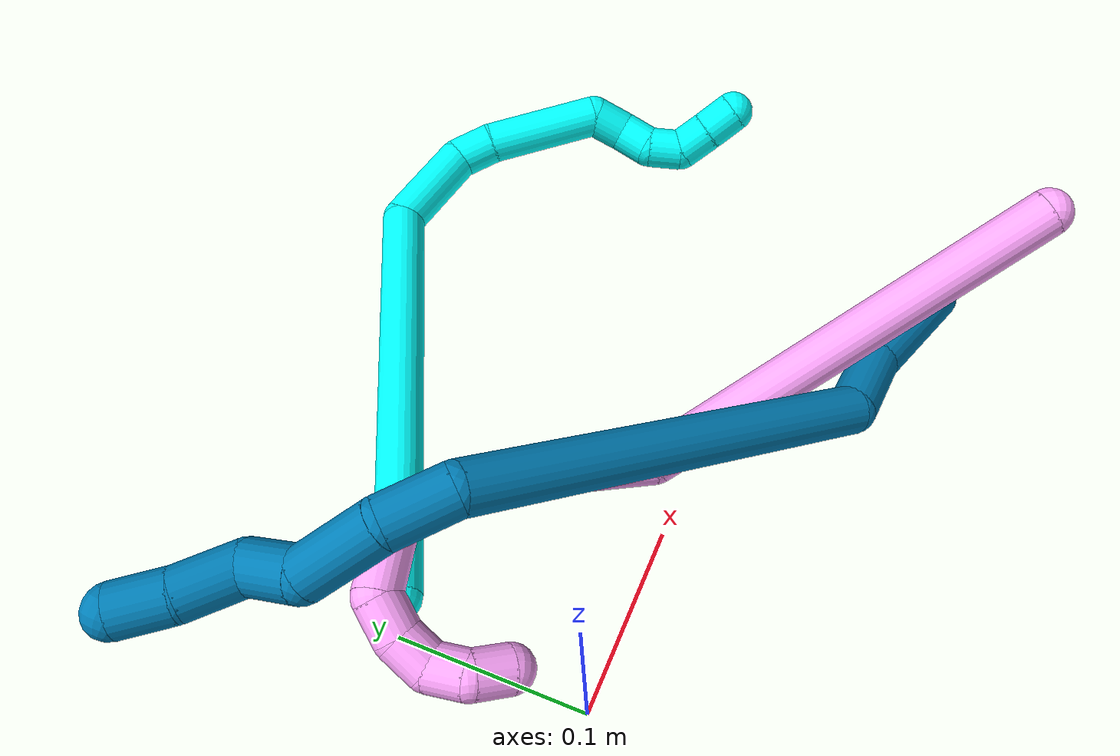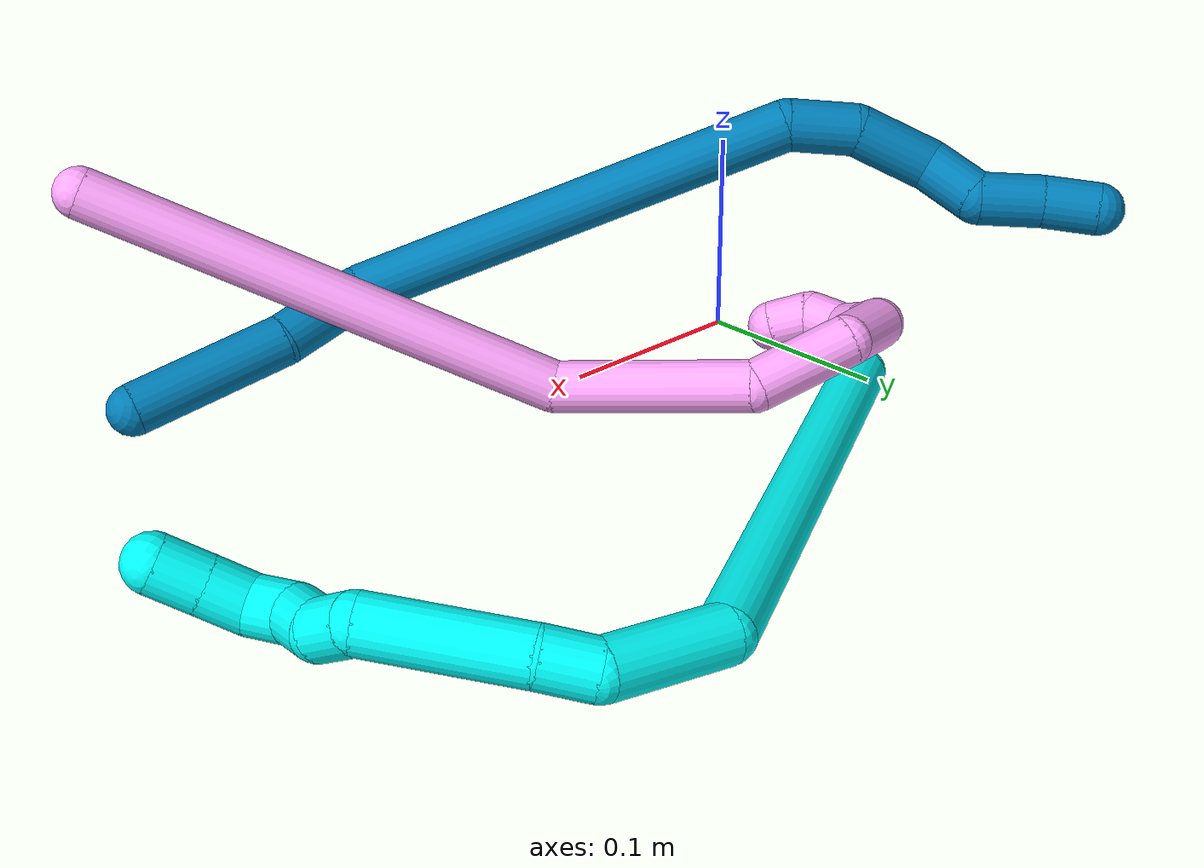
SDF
<sdf version="1.7">
 <world name="default">
  <model name="3">
   <static>0</static>
   <link name="3">
    <collision name="collision-cylinder-e_1_1_4">
     <pose>-0.002709 -0.001757 0.124394 0.01412 -0.021776 -0.000154</pose>
     <geometry><cylinder><radius>0.0125</radius><length>0.248871</length></cylinder></geometry>
     <surface>
      <friction><ode><mu>1.16</mu><mu2>1.16</mu2><slip1>0</slip1><slip2>0</slip2></ode></friction>
      <contact><ode><kp>1e+06</kp><kd>1</kd><max_vel>0</max_vel><min_depth>0.001</min_depth></ode></contact>
     </surface>
    </collision>
    <visual name="visual-cylinder-e_1_1_4">
     <pose>-0.002709 -0.001757 0.124394 0.01412 -0.021776 -0.000154</pose>
     <geometry><cylinder><radius>0.0125</radius><length>0.248871</length></cylinder></geometry>
     <material><ambient>0.003922 1 0.996078 1</ambient></material>
    </visual>
    <collision name="collision-cylinder-e_2_4_5">
     <pose>0.011413 -0.007184 0.27141 0.160852 0.633455 0.052823</pose>
     <geometry><cylinder><radius>0.0125</radius><length>0.056871</length></cylinder></geometry>
     <surface>
      <friction><ode><mu>1.16</mu><mu2>1.16</mu2><slip1>0</slip1><slip2>0</slip2></ode></friction>
      <contact><ode><kp>1e+06</kp><kd>1</kd><max_vel>0</max_vel><min_depth>0.001</min_depth></ode></contact>
     </surface>
    </collision>
    <visual name="visual-cylinder-e_2_4_5">
     <pose>0.011413 -0.007184 0.27141 0.160852 0.633455 0.052823</pose>
     <geometry><cylinder><radius>0.0125</radius><length>0.056871</length></cylinder></geometry>
     <material><ambient>0.003922 1 0.996078 1</ambient></material>
    </visual>
    <collision name="collision-cylinder-e_3_5_6">
     <pose>0.038957 -0.014474 0.29745 0.814134 1.13578 0.536866</pose>
     <geometry><cylinder><radius>0.0125</radius><length>0.023625</length></cylinder></geometry>
     <surface>
      <friction><ode><mu>1.16</mu><mu2>1.16</mu2><slip1>0</slip1><slip2>0</slip2></ode></friction>
      <contact><ode><kp>1e+06</kp><kd>1</kd><max_vel>0</max_vel><min_depth>0.001</min_depth></ode></contact>
     </surface>
    </collision>
    <visual name="visual-cylinder-e_3_5_6">
     <pose>0.038957 -0.014474 0.29745 0.814134 1.13578 0.536866</pose>
     <geometry><cylinder><radius>0.0125</radius><length>0.023625</length></cylinder></geometry>
     <material><ambient>0.003922 1 0.996078 1</ambient></material>
    </visual>
    <collision name="collision-cylinder-e_4_6_7">
     <pose>0.082189 -0.024455 0.306772 0.822587 1.31 0.64656</pose>
     <geometry><cylinder><radius>0.0125</radius><length>0.067315</length></cylinder></geometry>
     <surface>
      <friction><ode><mu>1.16</mu><mu2>1.16</mu2><slip1>0</slip1><slip2>0</slip2></ode></friction>
      <contact><ode><kp>1e+06</kp><kd>1</kd><max_vel>0</max_vel><min_depth>0.001</min_depth></ode></contact>
     </surface>
    </collision>
    <visual name="visual-cylinder-e_4_6_7">
     <pose>0.082189 -0.024455 0.306772 0.822587 1.31 0.64656</pose>
     <geometry><cylinder><radius>0.0125</radius><length>0.067315</length></cylinder></geometry>
     <material><ambient>0.003922 1 0.996078 1</ambient></material>
    </visual>
    <collision name="collision-cylinder-e_5_7_8">
     <pose>0.124056 -0.026591 0.310073 -2.12315 1.08277 -1.64488</pose>
     <geometry><cylinder><radius>0.0125</radius><length>0.021165</length></cylinder></geometry>
     <surface>
      <friction><ode><mu>1.16</mu><mu2>1.16</mu2><slip1>0</slip1><slip2>0</slip2></ode></friction>
      <contact><ode><kp>1e+06</kp><kd>1</kd><max_vel>0</max_vel><min_depth>0.001</min_depth></ode></contact>
     </surface>
    </collision>
    <visual name="visual-cylinder-e_5_7_8">
     <pose>0.124056 -0.026591 0.310073 -2.12315 1.08277 -1.64488</pose>
     <geometry><cylinder><radius>0.0125</radius><length>0.021165</length></cylinder></geometry>
     <material><ambient>0.003922 1 0.996078 1</ambient></material>
    </visual>
    <collision name="collision-cylinder-e_6_8_9">
     <pose>0.141541 -0.021252 0.301436 -2.9589 0.924788 -2.77809</pose>
     <geometry><cylinder><radius>0.0125</radius><length>0.020384</length></cylinder></geometry>
     <surface>
      <friction><ode><mu>1.16</mu><mu2>1.16</mu2><slip1>0</slip1><slip2>0</slip2></ode></friction>
      <contact><ode><kp>1e+06</kp><kd>1</kd><max_vel>0</max_vel><min_depth>0.001</min_depth></ode></contact>
     </surface>
    </collision>
    <visual name="visual-cylinder-e_6_8_9">
     <pose>0.141541 -0.021252 0.301436 -2.9589 0.924788 -2.77809</pose>
     <geometry><cylinder><radius>0.0125</radius><length>0.020384</length></cylinder></geometry>
     <material><ambient>0.003922 1 0.996078 1</ambient></material>
    </visual>
    <collision name="collision-cylinder-e_7_9_10">
     <pose>0.159754 -0.020135 0.294085 -3.13966 1.44077 -3.13939</pose>
     <geometry><cylinder><radius>0.0125</radius><length>0.020322</length></cylinder></geometry>
     <surface>
      <friction><ode><mu>1.16</mu><mu2>1.16</mu2><slip1>0</slip1><slip2>0</slip2></ode></friction>
      <contact><ode><kp>1e+06</kp><kd>1</kd><max_vel>0</max_vel><min_depth>0.001</min_depth></ode></contact>
     </surface>
    </collision>
    <visual name="visual-cylinder-e_7_9_10">
     <pose>0.159754 -0.020135 0.294085 -3.13966 1.44077 -3.13939</pose>
     <geometry><cylinder><radius>0.0125</radius><length>0.020322</length></cylinder></geometry>
     <material><ambient>0.003922 1 0.996078 1</ambient></material>
    </visual>
    <collision name="collision-cylinder-e_8_10_11">
     <pose>0.178059 -0.025444 0.295762 1.05746 0.933065 0.572283</pose>
     <geometry><cylinder><radius>0.0125</radius><length>0.020485</length></cylinder></geometry>
     <surface>
      <friction><ode><mu>1.16</mu><mu2>1.16</mu2><slip1>0</slip1><slip2>0</slip2></ode></friction>
      <contact><ode><kp>1e+06</kp><kd>1</kd><max_vel>0</max_vel><min_depth>0.001</min_depth></ode></contact>
     </surface>
    </collision>
    <visual name="visual-cylinder-e_8_10_11">
     <pose>0.178059 -0.025444 0.295762 1.05746 0.933065 0.572283</pose>
     <geometry><cylinder><radius>0.0125</radius><length>0.020485</length></cylinder></geometry>
     <material><ambient>0.003922 1 0.996078 1</ambient></material>
    </visual>
    <collision name="collision-cylinder-e_9_11_2">
     <pose>0.194563 -0.036277 0.302059 1.0316 0.909987 0.541178</pose>
     <geometry><cylinder><radius>0.0125</radius><length>0.020961</length></cylinder></geometry>
     <surface>
      <friction><ode><mu>1.16</mu><mu2>1.16</mu2><slip1>0</slip1><slip2>0</slip2></ode></friction>
      <contact><ode><kp>1e+06</kp><kd>1</kd><max_vel>0</max_vel><min_depth>0.001</min_depth></ode></contact>
     </surface>
    </collision>
    <visual name="visual-cylinder-e_9_11_2">
     <pose>0.194563 -0.036277 0.302059 1.0316 0.909987 0.541178</pose>
     <geometry><cylinder><radius>0.0125</radius><length>0.020961</length></cylinder></geometry>
     <material><ambient>0.003922 1 0.996078 1</ambient></material>
    </visual>
    <collision name="collision-sphere-2">
     <pose>0.202838 -0.041797 0.305362 0 -0 0</pose>
     <geometry><sphere><radius>0.0125</radius></sphere></geometry>
     <surface>
      <friction><ode><mu>1.16</mu><mu2>1.16</mu2><slip1>0</slip1><slip2>0</slip2></ode></friction>
      <contact><ode><kp>1e+06</kp><kd>1</kd><max_vel>0</max_vel><min_depth>0.001</min_depth></ode></contact>
     </surface>
    </collision>
    <visual name="visual-sphere-2">
     <pose>0.202838 -0.041797 0.305362 0 -0 0</pose>
     <geometry><sphere><radius>0.0125</radius></sphere></geometry>
     <material><ambient>0.003922 1 0.996078 1</ambient></material>
    </visual>
    <collision name="collision-sphere-11">
     <pose>0.186289 -0.030757 0.298757 0 -0 0</pose>
     <geometry><sphere><radius>0.0125</radius></sphere></geometry>
     <surface>
      <friction><ode><mu>1.16</mu><mu2>1.16</mu2><slip1>0</slip1><slip2>0</slip2></ode></friction>
      <contact><ode><kp>1e+06</kp><kd>1</kd><max_vel>0</max_vel><min_depth>0.001</min_depth></ode></contact>
     </surface>
    </collision>
    <visual name="visual-sphere-11">
     <pose>0.186289 -0.030757 0.298757 0 -0 0</pose>
     <geometry><sphere><radius>0.0125</radius></sphere></geometry>
     <material><ambient>0.003922 1 0.996078 1</ambient></material>
    </visual>
    <collision name="collision-sphere-10">
     <pose>0.16983 -0.020132 0.292767 0 -0 0</pose>
     <geometry><sphere><radius>0.0125</radius></sphere></geometry>
     <surface>
      <friction><ode><mu>1.16</mu><mu2>1.16</mu2><slip1>0</slip1><slip2>0</slip2></ode></friction>
      <contact><ode><kp>1e+06</kp><kd>1</kd><max_vel>0</max_vel><min_depth>0.001</min_depth></ode></contact>
     </surface>
    </collision>
    <visual name="visual-sphere-10">
     <pose>0.16983 -0.020132 0.292767 0 -0 0</pose>
     <geometry><sphere><radius>0.0125</radius></sphere></geometry>
     <material><ambient>0.003922 1 0.996078 1</ambient></material>
    </visual>
    <collision name="collision-sphere-9">
     <pose>0.149679 -0.020137 0.295402 0 -0 0</pose>
     <geometry><sphere><radius>0.0125</radius></sphere></geometry>
     <surface>
      <friction><ode><mu>1.16</mu><mu2>1.16</mu2><slip1>0</slip1><slip2>0</slip2></ode></friction>
      <contact><ode><kp>1e+06</kp><kd>1</kd><max_vel>0</max_vel><min_depth>0.001</min_depth></ode></contact>
     </surface>
    </collision>
    <visual name="visual-sphere-9">
     <pose>0.149679 -0.020137 0.295402 0 -0 0</pose>
     <geometry><sphere><radius>0.0125</radius></sphere></geometry>
     <material><ambient>0.003922 1 0.996078 1</ambient></material>
    </visual>
    <collision name="collision-sphere-4">
     <pose>-0.005419 -0.003513 0.248787 0 -0 0</pose>
     <geometry><sphere><radius>0.0125</radius></sphere></geometry>
     <surface>
      <friction><ode><mu>1.16</mu><mu2>1.16</mu2><slip1>0</slip1><slip2>0</slip2></ode></friction>
      <contact><ode><kp>1e+06</kp><kd>1</kd><max_vel>0</max_vel><min_depth>0.001</min_depth></ode></contact>
     </surface>
    </collision>
    <visual name="visual-sphere-4">
     <pose>-0.005419 -0.003513 0.248787 0 -0 0</pose>
     <geometry><sphere><radius>0.0125</radius></sphere></geometry>
     <material><ambient>0.003922 1 0.996078 1</ambient></material>
    </visual>
    <collision name="collision-sphere-1">
     <geometry><sphere><radius>0.0125</radius></sphere></geometry>
     <surface>
      <friction><ode><mu>1.16</mu><mu2>1.16</mu2><slip1>0</slip1><slip2>0</slip2></ode></friction>
      <contact><ode><kp>1e+06</kp><kd>1</kd><max_vel>0</max_vel><min_depth>0.001</min_depth></ode></contact>
     </surface>
    </collision>
    <visual name="visual-sphere-1">
     <geometry><sphere><radius>0.0125</radius></sphere></geometry>
     <material><ambient>0.003922 1 0.996078 1</ambient></material>
    </visual>
    <collision name="collision-sphere-8">
     <pose>0.133403 -0.022367 0.307469 0 -0 0</pose>
     <geometry><sphere><radius>0.0125</radius></sphere></geometry>
     <surface>
      <friction><ode><mu>1.16</mu><mu2>1.16</mu2><slip1>0</slip1><slip2>0</slip2></ode></friction>
      <contact><ode><kp>1e+06</kp><kd>1</kd><max_vel>0</max_vel><min_depth>0.001</min_depth></ode></contact>
     </surface>
    </collision>
    <visual name="visual-sphere-8">
     <pose>0.133403 -0.022367 0.307469 0 -0 0</pose>
     <geometry><sphere><radius>0.0125</radius></sphere></geometry>
     <material><ambient>0.003922 1 0.996078 1</ambient></material>
    </visual>
    <collision name="collision-sphere-5">
     <pose>0.028245 -0.010854 0.294033 0 -0 0</pose>
     <geometry><sphere><radius>0.0125</radius></sphere></geometry>
     <surface>
      <friction><ode><mu>1.16</mu><mu2>1.16</mu2><slip1>0</slip1><slip2>0</slip2></ode></friction>
      <contact><ode><kp>1e+06</kp><kd>1</kd><max_vel>0</max_vel><min_depth>0.001</min_depth></ode></contact>
     </surface>
    </collision>
    <visual name="visual-sphere-5">
     <pose>0.028245 -0.010854 0.294033 0 -0 0</pose>
     <geometry><sphere><radius>0.0125</radius></sphere></geometry>
     <material><ambient>0.003922 1 0.996078 1</ambient></material>
    </visual>
    <collision name="collision-sphere-6">
     <pose>0.04967 -0.018094 0.300868 0 -0 0</pose>
     <geometry><sphere><radius>0.0125</radius></sphere></geometry>
     <surface>
      <friction><ode><mu>1.16</mu><mu2>1.16</mu2><slip1>0</slip1><slip2>0</slip2></ode></friction>
      <contact><ode><kp>1e+06</kp><kd>1</kd><max_vel>0</max_vel><min_depth>0.001</min_depth></ode></contact>
     </surface>
    </collision>
    <visual name="visual-sphere-6">
     <pose>0.04967 -0.018094 0.300868 0 -0 0</pose>
     <geometry><sphere><radius>0.0125</radius></sphere></geometry>
     <material><ambient>0.003922 1 0.996078 1</ambient></material>
    </visual>
    <collision name="collision-sphere-7">
     <pose>0.114708 -0.030815 0.312676 0 -0 0</pose>
     <geometry><sphere><radius>0.0125</radius></sphere></geometry>
     <surface>
      <friction><ode><mu>1.16</mu><mu2>1.16</mu2><slip1>0</slip1><slip2>0</slip2></ode></friction>
      <contact><ode><kp>1e+06</kp><kd>1</kd><max_vel>0</max_vel><min_depth>0.001</min_depth></ode></contact>
     </surface>
    </collision>
    <visual name="visual-sphere-7">
     <pose>0.114708 -0.030815 0.312676 0 -0 0</pose>
     <geometry><sphere><radius>0.0125</radius></sphere></geometry>
     <material><ambient>0.003922 1 0.996078 1</ambient></material>
    </visual>
    <inertial>
     <pose>0.045822 -0.011041 0.21029 0 -0 0</pose>
     <mass>0.5</mass>
     <inertia>
      <ixx>0.001336</ixx>
      <ixy>0</ixy>
      <ixz>0</ixz>
      <iyy>0.001349</iyy>
      <iyz>0</iyz>
      <izz>3.3e-05</izz>
     </inertia>
    </inertial>
   </link>
   <pose>0.014945 0.106775 0.011213 -1.58583 0.08134 -1.10991</pose>
  </model>
  <model name="4">
   <static>0</static>
   <link name="4">
    <collision name="collision-cylinder-e_1_1_4">
     <pose>-0.082285 0.077924 -0.035283 -1.99596 -0.766002 1.11677</pose>
     <geometry><cylinder><radius>0.0125</radius><length>0.237385</length></cylinder></geometry>
     <surface>
      <friction><ode><mu>1.16</mu><mu2>1.16</mu2><slip1>0</slip1><slip2>0</slip2></ode></friction>
      <contact><ode><kp>1e+06</kp><kd>1</kd><max_vel>0</max_vel><min_depth>0.001</min_depth></ode></contact>
     </surface>
    </collision>
    <visual name="visual-cylinder-e_1_1_4">
     <pose>-0.082285 0.077924 -0.035283 -1.99596 -0.766002 1.11677</pose>
     <geometry><cylinder><radius>0.0125</radius><length>0.237385</length></cylinder></geometry>
     <material><ambient>1 0.65098 0.996078 1</ambient></material>
    </visual>
    <collision name="collision-cylinder-e_2_4_5">
     <pose>-0.211544 0.166202 -0.073307 -1.82959 -1.34665 1.60647</pose>
     <geometry><cylinder><radius>0.0125</radius><length>0.096361</length></cylinder></geometry>
     <surface>
      <friction><ode><mu>1.16</mu><mu2>1.16</mu2><slip1>0</slip1><slip2>0</slip2></ode></friction>
      <contact><ode><kp>1e+06</kp><kd>1</kd><max_vel>0</max_vel><min_depth>0.001</min_depth></ode></contact>
     </surface>
    </collision>
    <visual name="visual-cylinder-e_2_4_5">
     <pose>-0.211544 0.166202 -0.073307 -1.82959 -1.34665 1.60647</pose>
     <geometry><cylinder><radius>0.0125</radius><length>0.096361</length></cylinder></geometry>
     <material><ambient>1 0.65098 0.996078 1</ambient></material>
    </visual>
    <collision name="collision-cylinder-e_3_5_6">
     <pose>-0.278705 0.174456 -0.090519 2.99756 -0.943871 -2.86077</pose>
     <geometry><cylinder><radius>0.0125</radius><length>0.049852</length></cylinder></geometry>
     <surface>
      <friction><ode><mu>1.16</mu><mu2>1.16</mu2><slip1>0</slip1><slip2>0</slip2></ode></friction>
      <contact><ode><kp>1e+06</kp><kd>1</kd><max_vel>0</max_vel><min_depth>0.001</min_depth></ode></contact>
     </surface>
    </collision>
    <visual name="visual-cylinder-e_3_5_6">
     <pose>-0.278705 0.174456 -0.090519 2.99756 -0.943871 -2.86077</pose>
     <geometry><cylinder><radius>0.0125</radius><length>0.049852</length></cylinder></geometry>
     <material><ambient>1 0.65098 0.996078 1</ambient></material>
    </visual>
    <collision name="collision-cylinder-e_4_6_7">
     <pose>-0.302636 0.174619 -0.121799 -3.00783 -0.217299 2.04018</pose>
     <geometry><cylinder><radius>0.0125</radius><length>0.034736</length></cylinder></geometry>
     <surface>
      <friction><ode><mu>1.16</mu><mu2>1.16</mu2><slip1>0</slip1><slip2>0</slip2></ode></friction>
      <contact><ode><kp>1e+06</kp><kd>1</kd><max_vel>0</max_vel><min_depth>0.001</min_depth></ode></contact>
     </surface>
    </collision>
    <visual name="visual-cylinder-e_4_6_7">
     <pose>-0.302636 0.174619 -0.121799 -3.00783 -0.217299 2.04018</pose>
     <geometry><cylinder><radius>0.0125</radius><length>0.034736</length></cylinder></geometry>
     <material><ambient>1 0.65098 0.996078 1</ambient></material>
    </visual>
    <collision name="collision-cylinder-e_5_7_8">
     <pose>-0.301013 0.179623 -0.147506 -2.84266 0.522856 -2.11628</pose>
     <geometry><cylinder><radius>0.0125</radius><length>0.021495</length></cylinder></geometry>
     <surface>
      <friction><ode><mu>1.16</mu><mu2>1.16</mu2><slip1>0</slip1><slip2>0</slip2></ode></friction>
      <contact><ode><kp>1e+06</kp><kd>1</kd><max_vel>0</max_vel><min_depth>0.001</min_depth></ode></contact>
     </surface>
    </collision>
    <visual name="visual-cylinder-e_5_7_8">
     <pose>-0.301013 0.179623 -0.147506 -2.84266 0.522856 -2.11628</pose>
     <geometry><cylinder><radius>0.0125</radius><length>0.021495</length></cylinder></geometry>
     <material><ambient>1 0.65098 0.996078 1</ambient></material>
    </visual>
    <collision name="collision-cylinder-e_6_8_9">
     <pose>-0.288248 0.183533 -0.163113 -2.96921 0.826832 -2.75264</pose>
     <geometry><cylinder><radius>0.0125</radius><length>0.020109</length></cylinder></geometry>
     <surface>
      <friction><ode><mu>1.16</mu><mu2>1.16</mu2><slip1>0</slip1><slip2>0</slip2></ode></friction>
      <contact><ode><kp>1e+06</kp><kd>1</kd><max_vel>0</max_vel><min_depth>0.001</min_depth></ode></contact>
     </surface>
    </collision>
    <visual name="visual-cylinder-e_6_8_9">
     <pose>-0.288248 0.183533 -0.163113 -2.96921 0.826832 -2.75264</pose>
     <geometry><cylinder><radius>0.0125</radius><length>0.020109</length></cylinder></geometry>
     <material><ambient>1 0.65098 0.996078 1</ambient></material>
    </visual>
    <collision name="collision-cylinder-e_7_9_10">
     <pose>-0.27236 0.180649 -0.173253 2.27354 1.01191 1.74832</pose>
     <geometry><cylinder><radius>0.0125</radius><length>0.020028</length></cylinder></geometry>
     <surface>
      <friction><ode><mu>1.16</mu><mu2>1.16</mu2><slip1>0</slip1><slip2>0</slip2></ode></friction>
      <contact><ode><kp>1e+06</kp><kd>1</kd><max_vel>0</max_vel><min_depth>0.001</min_depth></ode></contact>
     </surface>
    </collision>
    <visual name="visual-cylinder-e_7_9_10">
     <pose>-0.27236 0.180649 -0.173253 2.27354 1.01191 1.74832</pose>
     <geometry><cylinder><radius>0.0125</radius><length>0.020028</length></cylinder></geometry>
     <material><ambient>1 0.65098 0.996078 1</ambient></material>
    </visual>
    <collision name="collision-cylinder-e_8_10_2">
     <pose>-0.253962 0.176683 -0.175212 -0.057676 1.42298 -0.049728</pose>
     <geometry><cylinder><radius>0.0125</radius><length>0.020034</length></cylinder></geometry>
     <surface>
      <friction><ode><mu>1.16</mu><mu2>1.16</mu2><slip1>0</slip1><slip2>0</slip2></ode></friction>
      <contact><ode><kp>1e+06</kp><kd>1</kd><max_vel>0</max_vel><min_depth>0.001</min_depth></ode></contact>
     </surface>
    </collision>
    <visual name="visual-cylinder-e_8_10_2">
     <pose>-0.253962 0.176683 -0.175212 -0.057676 1.42298 -0.049728</pose>
     <geometry><cylinder><radius>0.0125</radius><length>0.020034</length></cylinder></geometry>
     <material><ambient>1 0.65098 0.996078 1</ambient></material>
    </visual>
    <collision name="collision-sphere-2">
     <pose>-0.244054 0.176768 -0.173739 0 -0 0</pose>
     <geometry><sphere><radius>0.0125</radius></sphere></geometry>
     <surface>
      <friction><ode><mu>1.16</mu><mu2>1.16</mu2><slip1>0</slip1><slip2>0</slip2></ode></friction>
      <contact><ode><kp>1e+06</kp><kd>1</kd><max_vel>0</max_vel><min_depth>0.001</min_depth></ode></contact>
     </surface>
    </collision>
    <visual name="visual-sphere-2">
     <pose>-0.244054 0.176768 -0.173739 0 -0 0</pose>
     <geometry><sphere><radius>0.0125</radius></sphere></geometry>
     <material><ambient>1 0.65098 0.996078 1</ambient></material>
    </visual>
    <collision name="collision-sphere-10">
     <pose>-0.263869 0.176597 -0.176684 0 -0 0</pose>
     <geometry><sphere><radius>0.0125</radius></sphere></geometry>
     <surface>
      <friction><ode><mu>1.16</mu><mu2>1.16</mu2><slip1>0</slip1><slip2>0</slip2></ode></friction>
      <contact><ode><kp>1e+06</kp><kd>1</kd><max_vel>0</max_vel><min_depth>0.001</min_depth></ode></contact>
     </surface>
    </collision>
    <visual name="visual-sphere-10">
     <pose>-0.263869 0.176597 -0.176684 0 -0 0</pose>
     <geometry><sphere><radius>0.0125</radius></sphere></geometry>
     <material><ambient>1 0.65098 0.996078 1</ambient></material>
    </visual>
    <collision name="collision-sphere-9">
     <pose>-0.28085 0.184701 -0.169821 0 -0 0</pose>
     <geometry><sphere><radius>0.0125</radius></sphere></geometry>
     <surface>
      <friction><ode><mu>1.16</mu><mu2>1.16</mu2><slip1>0</slip1><slip2>0</slip2></ode></friction>
      <contact><ode><kp>1e+06</kp><kd>1</kd><max_vel>0</max_vel><min_depth>0.001</min_depth></ode></contact>
     </surface>
    </collision>
    <visual name="visual-sphere-9">
     <pose>-0.28085 0.184701 -0.169821 0 -0 0</pose>
     <geometry><sphere><radius>0.0125</radius></sphere></geometry>
     <material><ambient>1 0.65098 0.996078 1</ambient></material>
    </visual>
    <collision name="collision-sphere-4">
     <pose>-0.164569 0.155849 -0.070566 0 -0 0</pose>
     <geometry><sphere><radius>0.0125</radius></sphere></geometry>
     <surface>
      <friction><ode><mu>1.16</mu><mu2>1.16</mu2><slip1>0</slip1><slip2>0</slip2></ode></friction>
      <contact><ode><kp>1e+06</kp><kd>1</kd><max_vel>0</max_vel><min_depth>0.001</min_depth></ode></contact>
     </surface>
    </collision>
    <visual name="visual-sphere-4">
     <pose>-0.164569 0.155849 -0.070566 0 -0 0</pose>
     <geometry><sphere><radius>0.0125</radius></sphere></geometry>
     <material><ambient>1 0.65098 0.996078 1</ambient></material>
    </visual>
    <collision name="collision-sphere-1">
     <geometry><sphere><radius>0.0125</radius></sphere></geometry>
     <surface>
      <friction><ode><mu>1.16</mu><mu2>1.16</mu2><slip1>0</slip1><slip2>0</slip2></ode></friction>
      <contact><ode><kp>1e+06</kp><kd>1</kd><max_vel>0</max_vel><min_depth>0.001</min_depth></ode></contact>
     </surface>
    </collision>
    <visual name="visual-sphere-1">
     <geometry><sphere><radius>0.0125</radius></sphere></geometry>
     <material><ambient>1 0.65098 0.996078 1</ambient></material>
    </visual>
    <collision name="collision-sphere-8">
     <pose>-0.295646 0.182365 -0.156404 0 -0 0</pose>
     <geometry><sphere><radius>0.0125</radius></sphere></geometry>
     <surface>
      <friction><ode><mu>1.16</mu><mu2>1.16</mu2><slip1>0</slip1><slip2>0</slip2></ode></friction>
      <contact><ode><kp>1e+06</kp><kd>1</kd><max_vel>0</max_vel><min_depth>0.001</min_depth></ode></contact>
     </surface>
    </collision>
    <visual name="visual-sphere-8">
     <pose>-0.295646 0.182365 -0.156404 0 -0 0</pose>
     <geometry><sphere><radius>0.0125</radius></sphere></geometry>
     <material><ambient>1 0.65098 0.996078 1</ambient></material>
    </visual>
    <collision name="collision-sphere-5">
     <pose>-0.258519 0.176554 -0.076048 0 -0 0</pose>
     <geometry><sphere><radius>0.0125</radius></sphere></geometry>
     <surface>
      <friction><ode><mu>1.16</mu><mu2>1.16</mu2><slip1>0</slip1><slip2>0</slip2></ode></friction>
      <contact><ode><kp>1e+06</kp><kd>1</kd><max_vel>0</max_vel><min_depth>0.001</min_depth></ode></contact>
     </surface>
    </collision>
    <visual name="visual-sphere-5">
     <pose>-0.258519 0.176554 -0.076048 0 -0 0</pose>
     <geometry><sphere><radius>0.0125</radius></sphere></geometry>
     <material><ambient>1 0.65098 0.996078 1</ambient></material>
    </visual>
    <collision name="collision-sphere-6">
     <pose>-0.298891 0.172357 -0.104991 0 -0 0</pose>
     <geometry><sphere><radius>0.0125</radius></sphere></geometry>
     <surface>
      <friction><ode><mu>1.16</mu><mu2>1.16</mu2><slip1>0</slip1><slip2>0</slip2></ode></friction>
      <contact><ode><kp>1e+06</kp><kd>1</kd><max_vel>0</max_vel><min_depth>0.001</min_depth></ode></contact>
     </surface>
    </collision>
    <visual name="visual-sphere-6">
     <pose>-0.298891 0.172357 -0.104991 0 -0 0</pose>
     <geometry><sphere><radius>0.0125</radius></sphere></geometry>
     <material><ambient>1 0.65098 0.996078 1</ambient></material>
    </visual>
    <collision name="collision-sphere-7">
     <pose>-0.30638 0.17688 -0.138607 0 -0 0</pose>
     <geometry><sphere><radius>0.0125</radius></sphere></geometry>
     <surface>
      <friction><ode><mu>1.16</mu><mu2>1.16</mu2><slip1>0</slip1><slip2>0</slip2></ode></friction>
      <contact><ode><kp>1e+06</kp><kd>1</kd><max_vel>0</max_vel><min_depth>0.001</min_depth></ode></contact>
     </surface>
    </collision>
    <visual name="visual-sphere-7">
     <pose>-0.30638 0.17688 -0.138607 0 -0 0</pose>
     <geometry><sphere><radius>0.0125</radius></sphere></geometry>
     <material><ambient>1 0.65098 0.996078 1</ambient></material>
    </visual>
    <inertial>
     <pose>-0.174267 0.127971 -0.075228 0 -0 0</pose>
     <mass>0.5</mass>
     <inertia>
      <ixx>0.001072</ixx>
      <ixy>0</ixy>
      <ixz>0</ixz>
      <iyy>0.001289</iyy>
      <iyz>0</iyz>
      <izz>9.4e-05</izz>
     </inertia>
    </inertial>
   </link>
   <pose>0.28825 -0.133452 0.108726 -1.50257 0.335262 -1.05038</pose>
  </model>
  <model name="9">
   <static>0</static>
   <link name="9">
    <collision name="collision-cylinder-e_1_1_4">
     <pose>-0.020852 0.012047 -0.029908 -2.75868 -0.574061 1.97953</pose>
     <geometry><cylinder><radius>0.0125</radius><length>0.076796</length></cylinder></geometry>
     <surface>
      <friction><ode><mu>1.16</mu><mu2>1.16</mu2><slip1>0</slip1><slip2>0</slip2></ode></friction>
      <contact><ode><kp>1e+06</kp><kd>1</kd><max_vel>0</max_vel><min_depth>0.001</min_depth></ode></contact>
     </surface>
    </collision>
    <visual name="visual-cylinder-e_1_1_4">
     <pose>-0.020852 0.012047 -0.029908 -2.75868 -0.574061 1.97953</pose>
     <geometry><cylinder><radius>0.0125</radius><length>0.076796</length></cylinder></geometry>
     <material><ambient>0 0.490196 0.709804 1</ambient></material>
    </visual>
    <collision name="collision-cylinder-e_2_4_5">
     <pose>-0.055942 0.026921 -0.07787 -2.98623 -0.661902 2.69602</pose>
     <geometry><cylinder><radius>0.0125</radius><length>0.046333</length></cylinder></geometry>
     <surface>
      <friction><ode><mu>1.16</mu><mu2>1.16</mu2><slip1>0</slip1><slip2>0</slip2></ode></friction>
      <contact><ode><kp>1e+06</kp><kd>1</kd><max_vel>0</max_vel><min_depth>0.001</min_depth></ode></contact>
     </surface>
    </collision>
    <visual name="visual-cylinder-e_2_4_5">
     <pose>-0.055942 0.026921 -0.07787 -2.98623 -0.661902 2.69602</pose>
     <geometry><cylinder><radius>0.0125</radius><length>0.046333</length></cylinder></geometry>
     <material><ambient>0 0.490196 0.709804 1</ambient></material>
    </visual>
    <collision name="collision-cylinder-e_3_5_6">
     <pose>-0.126857 0.103602 -0.153863 -2.23603 -0.543203 1.0398</pose>
     <geometry><cylinder><radius>0.0125</radius><length>0.219302</length></cylinder></geometry>
     <surface>
      <friction><ode><mu>1.16</mu><mu2>1.16</mu2><slip1>0</slip1><slip2>0</slip2></ode></friction>
      <contact><ode><kp>1e+06</kp><kd>1</kd><max_vel>0</max_vel><min_depth>0.001</min_depth></ode></contact>
     </surface>
    </collision>
    <visual name="visual-cylinder-e_3_5_6">
     <pose>-0.126857 0.103602 -0.153863 -2.23603 -0.543203 1.0398</pose>
     <geometry><cylinder><radius>0.0125</radius><length>0.219302</length></cylinder></geometry>
     <material><ambient>0 0.490196 0.709804 1</ambient></material>
    </visual>
    <collision name="collision-cylinder-e_4_6_7">
     <pose>-0.185276 0.188312 -0.223897 -2.41004 -0.106788 0.277286</pose>
     <geometry><cylinder><radius>0.0125</radius><length>0.032693</length></cylinder></geometry>
     <surface>
      <friction><ode><mu>1.16</mu><mu2>1.16</mu2><slip1>0</slip1><slip2>0</slip2></ode></friction>
      <contact><ode><kp>1e+06</kp><kd>1</kd><max_vel>0</max_vel><min_depth>0.001</min_depth></ode></contact>
     </surface>
    </collision>
    <visual name="visual-cylinder-e_4_6_7">
     <pose>-0.185276 0.188312 -0.223897 -2.41004 -0.106788 0.277286</pose>
     <geometry><cylinder><radius>0.0125</radius><length>0.032693</length></cylinder></geometry>
     <material><ambient>0 0.490196 0.709804 1</ambient></material>
    </visual>
    <collision name="collision-cylinder-e_5_7_8">
     <pose>-0.182057 0.210767 -0.251172 -2.48923 0.254085 -0.72211</pose>
     <geometry><cylinder><radius>0.0125</radius><length>0.039475</length></cylinder></geometry>
     <surface>
      <friction><ode><mu>1.16</mu><mu2>1.16</mu2><slip1>0</slip1><slip2>0</slip2></ode></friction>
      <contact><ode><kp>1e+06</kp><kd>1</kd><max_vel>0</max_vel><min_depth>0.001</min_depth></ode></contact>
     </surface>
    </collision>
    <visual name="visual-cylinder-e_5_7_8">
     <pose>-0.182057 0.210767 -0.251172 -2.48923 0.254085 -0.72211</pose>
     <geometry><cylinder><radius>0.0125</radius><length>0.039475</length></cylinder></geometry>
     <material><ambient>0 0.490196 0.709804 1</ambient></material>
    </visual>
    <collision name="collision-cylinder-e_6_8_9">
     <pose>-0.171139 0.23529 -0.269469 -1.80735 0.421242 -0.530133</pose>
     <geometry><cylinder><radius>0.0125</radius><length>0.029141</length></cylinder></geometry>
     <surface>
      <friction><ode><mu>1.16</mu><mu2>1.16</mu2><slip1>0</slip1><slip2>0</slip2></ode></friction>
      <contact><ode><kp>1e+06</kp><kd>1</kd><max_vel>0</max_vel><min_depth>0.001</min_depth></ode></contact>
     </surface>
    </collision>
    <visual name="visual-cylinder-e_6_8_9">
     <pose>-0.171139 0.23529 -0.269469 -1.80735 0.421242 -0.530133</pose>
     <geometry><cylinder><radius>0.0125</radius><length>0.029141</length></cylinder></geometry>
     <material><ambient>0 0.490196 0.709804 1</ambient></material>
    </visual>
    <collision name="collision-cylinder-e_7_9_10">
     <pose>-0.167124 0.258897 -0.283129 -2.34977 -0.128748 0.306039</pose>
     <geometry><cylinder><radius>0.0125</radius><length>0.030267</length></cylinder></geometry>
     <surface>
      <friction><ode><mu>1.16</mu><mu2>1.16</mu2><slip1>0</slip1><slip2>0</slip2></ode></friction>
      <contact><ode><kp>1e+06</kp><kd>1</kd><max_vel>0</max_vel><min_depth>0.001</min_depth></ode></contact>
     </surface>
    </collision>
    <visual name="visual-cylinder-e_7_9_10">
     <pose>-0.167124 0.258897 -0.283129 -2.34977 -0.128748 0.306039</pose>
     <geometry><cylinder><radius>0.0125</radius><length>0.030267</length></cylinder></geometry>
     <material><ambient>0 0.490196 0.709804 1</ambient></material>
    </visual>
    <collision name="collision-cylinder-e_8_10_2">
     <pose>-0.169556 0.280044 -0.301362 -2.2044 -0.037647 0.074347</pose>
     <geometry><cylinder><radius>0.0125</radius><length>0.025994</length></cylinder></geometry>
     <surface>
      <friction><ode><mu>1.16</mu><mu2>1.16</mu2><slip1>0</slip1><slip2>0</slip2></ode></friction>
      <contact><ode><kp>1e+06</kp><kd>1</kd><max_vel>0</max_vel><min_depth>0.001</min_depth></ode></contact>
     </surface>
    </collision>
    <visual name="visual-cylinder-e_8_10_2">
     <pose>-0.169556 0.280044 -0.301362 -2.2044 -0.037647 0.074347</pose>
     <geometry><cylinder><radius>0.0125</radius><length>0.025994</length></cylinder></geometry>
     <material><ambient>0 0.490196 0.709804 1</ambient></material>
    </visual>
    <collision name="collision-sphere-2">
     <pose>-0.170045 0.290511 -0.309052 0 -0 0</pose>
     <geometry><sphere><radius>0.0125</radius></sphere></geometry>
     <surface>
      <friction><ode><mu>1.16</mu><mu2>1.16</mu2><slip1>0</slip1><slip2>0</slip2></ode></friction>
      <contact><ode><kp>1e+06</kp><kd>1</kd><max_vel>0</max_vel><min_depth>0.001</min_depth></ode></contact>
     </surface>
    </collision>
    <visual name="visual-sphere-2">
     <pose>-0.170045 0.290511 -0.309052 0 -0 0</pose>
     <geometry><sphere><radius>0.0125</radius></sphere></geometry>
     <material><ambient>0 0.490196 0.709804 1</ambient></material>
    </visual>
    <collision name="collision-sphere-10">
     <pose>-0.169067 0.269577 -0.293673 0 -0 0</pose>
     <geometry><sphere><radius>0.0125</radius></sphere></geometry>
     <surface>
      <friction><ode><mu>1.16</mu><mu2>1.16</mu2><slip1>0</slip1><slip2>0</slip2></ode></friction>
      <contact><ode><kp>1e+06</kp><kd>1</kd><max_vel>0</max_vel><min_depth>0.001</min_depth></ode></contact>
     </surface>
    </collision>
    <visual name="visual-sphere-10">
     <pose>-0.169067 0.269577 -0.293673 0 -0 0</pose>
     <geometry><sphere><radius>0.0125</radius></sphere></geometry>
     <material><ambient>0 0.490196 0.709804 1</ambient></material>
    </visual>
    <collision name="collision-sphere-9">
     <pose>-0.165181 0.248216 -0.272585 0 -0 0</pose>
     <geometry><sphere><radius>0.0125</radius></sphere></geometry>
     <surface>
      <friction><ode><mu>1.16</mu><mu2>1.16</mu2><slip1>0</slip1><slip2>0</slip2></ode></friction>
      <contact><ode><kp>1e+06</kp><kd>1</kd><max_vel>0</max_vel><min_depth>0.001</min_depth></ode></contact>
     </surface>
    </collision>
    <visual name="visual-sphere-9">
     <pose>-0.165181 0.248216 -0.272585 0 -0 0</pose>
     <geometry><sphere><radius>0.0125</radius></sphere></geometry>
     <material><ambient>0 0.490196 0.709804 1</ambient></material>
    </visual>
    <collision name="collision-sphere-4">
     <pose>-0.041704 0.024093 -0.059816 0 -0 0</pose>
     <geometry><sphere><radius>0.0125</radius></sphere></geometry>
     <surface>
      <friction><ode><mu>1.16</mu><mu2>1.16</mu2><slip1>0</slip1><slip2>0</slip2></ode></friction>
      <contact><ode><kp>1e+06</kp><kd>1</kd><max_vel>0</max_vel><min_depth>0.001</min_depth></ode></contact>
     </surface>
    </collision>
    <visual name="visual-sphere-4">
     <pose>-0.041704 0.024093 -0.059816 0 -0 0</pose>
     <geometry><sphere><radius>0.0125</radius></sphere></geometry>
     <material><ambient>0 0.490196 0.709804 1</ambient></material>
    </visual>
    <collision name="collision-sphere-1">
     <geometry><sphere><radius>0.0125</radius></sphere></geometry>
     <surface>
      <friction><ode><mu>1.16</mu><mu2>1.16</mu2><slip1>0</slip1><slip2>0</slip2></ode></friction>
      <contact><ode><kp>1e+06</kp><kd>1</kd><max_vel>0</max_vel><min_depth>0.001</min_depth></ode></contact>
     </surface>
    </collision>
    <visual name="visual-sphere-1">
     <geometry><sphere><radius>0.0125</radius></sphere></geometry>
     <material><ambient>0 0.490196 0.709804 1</ambient></material>
    </visual>
    <collision name="collision-sphere-8">
     <pose>-0.177096 0.222364 -0.266353 0 -0 0</pose>
     <geometry><sphere><radius>0.0125</radius></sphere></geometry>
     <surface>
      <friction><ode><mu>1.16</mu><mu2>1.16</mu2><slip1>0</slip1><slip2>0</slip2></ode></friction>
      <contact><ode><kp>1e+06</kp><kd>1</kd><max_vel>0</max_vel><min_depth>0.001</min_depth></ode></contact>
     </surface>
    </collision>
    <visual name="visual-sphere-8">
     <pose>-0.177096 0.222364 -0.266353 0 -0 0</pose>
     <geometry><sphere><radius>0.0125</radius></sphere></geometry>
     <material><ambient>0 0.490196 0.709804 1</ambient></material>
    </visual>
    <collision name="collision-sphere-5">
     <pose>-0.070181 0.029749 -0.095924 0 -0 0</pose>
     <geometry><sphere><radius>0.0125</radius></sphere></geometry>
     <surface>
      <friction><ode><mu>1.16</mu><mu2>1.16</mu2><slip1>0</slip1><slip2>0</slip2></ode></friction>
      <contact><ode><kp>1e+06</kp><kd>1</kd><max_vel>0</max_vel><min_depth>0.001</min_depth></ode></contact>
     </surface>
    </collision>
    <visual name="visual-sphere-5">
     <pose>-0.070181 0.029749 -0.095924 0 -0 0</pose>
     <geometry><sphere><radius>0.0125</radius></sphere></geometry>
     <material><ambient>0 0.490196 0.709804 1</ambient></material>
    </visual>
    <collision name="collision-sphere-6">
     <pose>-0.183534 0.177454 -0.211802 0 -0 0</pose>
     <geometry><sphere><radius>0.0125</radius></sphere></geometry>
     <surface>
      <friction><ode><mu>1.16</mu><mu2>1.16</mu2><slip1>0</slip1><slip2>0</slip2></ode></friction>
      <contact><ode><kp>1e+06</kp><kd>1</kd><max_vel>0</max_vel><min_depth>0.001</min_depth></ode></contact>
     </surface>
    </collision>
    <visual name="visual-sphere-6">
     <pose>-0.183534 0.177454 -0.211802 0 -0 0</pose>
     <geometry><sphere><radius>0.0125</radius></sphere></geometry>
     <material><ambient>0 0.490196 0.709804 1</ambient></material>
    </visual>
    <collision name="collision-sphere-7">
     <pose>-0.187019 0.199169 -0.235991 0 -0 0</pose>
     <geometry><sphere><radius>0.0125</radius></sphere></geometry>
     <surface>
      <friction><ode><mu>1.16</mu><mu2>1.16</mu2><slip1>0</slip1><slip2>0</slip2></ode></friction>
      <contact><ode><kp>1e+06</kp><kd>1</kd><max_vel>0</max_vel><min_depth>0.001</min_depth></ode></contact>
     </surface>
    </collision>
    <visual name="visual-sphere-7">
     <pose>-0.187019 0.199169 -0.235991 0 -0 0</pose>
     <geometry><sphere><radius>0.0125</radius></sphere></geometry>
     <material><ambient>0 0.490196 0.709804 1</ambient></material>
    </visual>
    <inertial>
     <pose>-0.11942 0.122682 -0.162275 0 -0 0</pose>
     <mass>0.5</mass>
     <inertia>
      <ixx>0.001054</ixx>
      <ixy>0</ixy>
      <ixz>0</ixz>
      <iyy>0.000765</iyy>
      <iyz>0</iyz>
      <izz>-0.000165</izz>
     </inertia>
    </inertial>
   </link>
   <pose>0.29365 -0.095054 0.014142 0.333142 1.17659 0.325932</pose>
  </model>
 </world>
</sdf>
